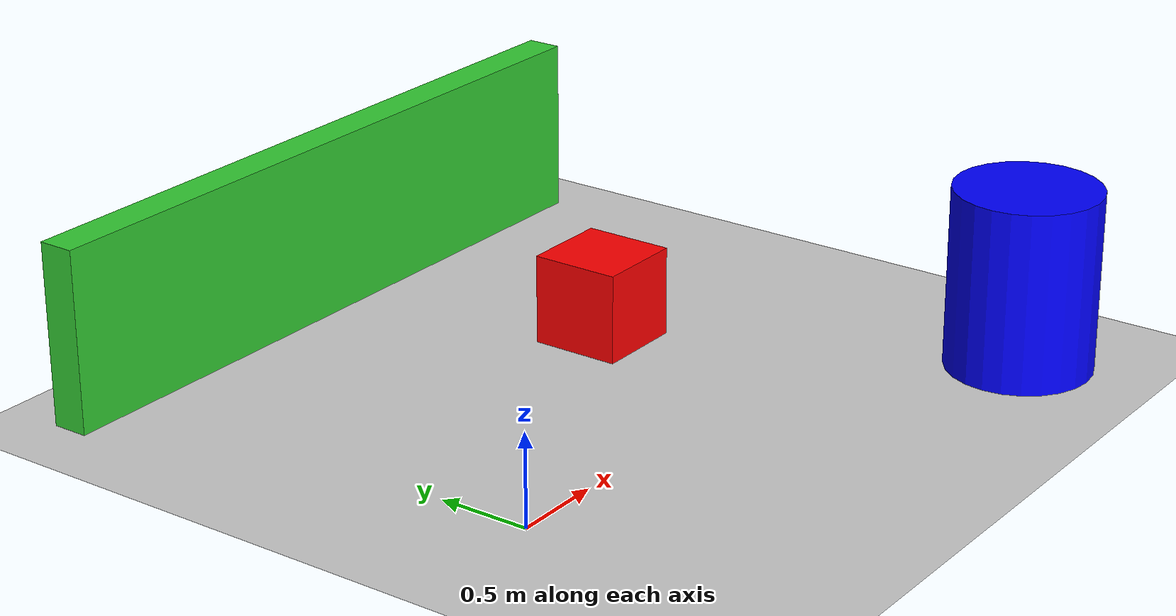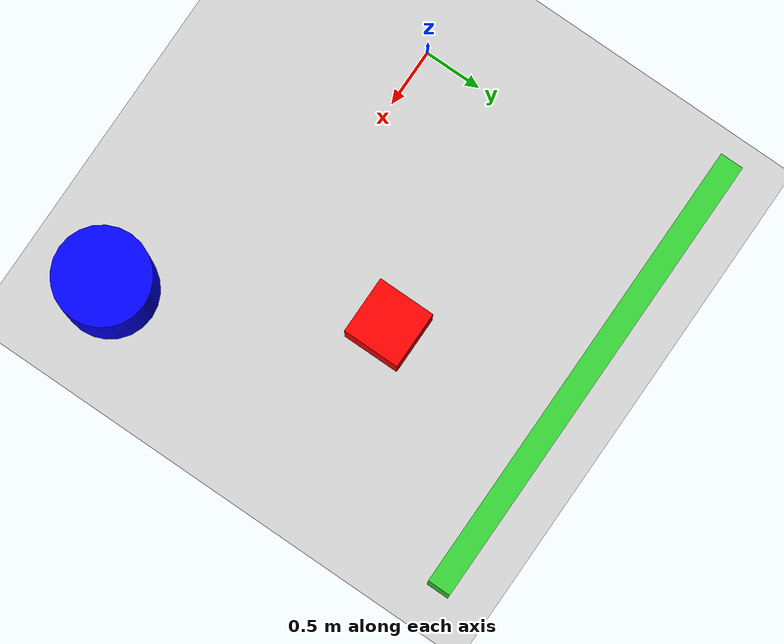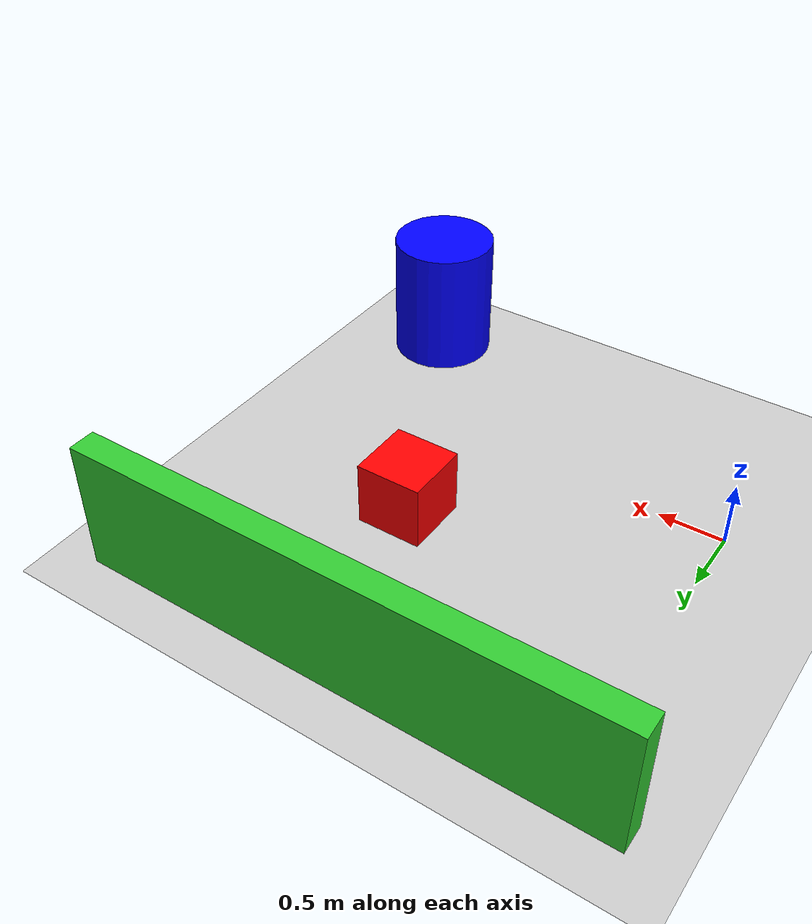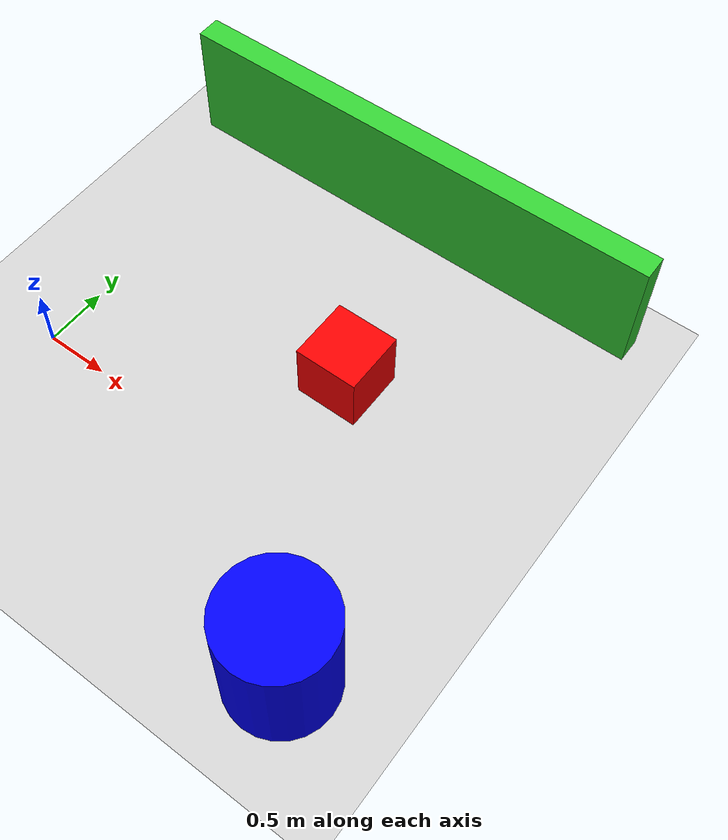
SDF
<?xml version="1.0" ?>
<sdf version="1.5">
  <world name="default">
    <include><uri>model://sun</uri></include>
    <include><uri>model://ground_plane</uri></include>

    <!-- Red Box Obstacle -->
    <model name="red_box">
      <pose>2 1 0.25 0 0 0</pose>
      <static>true</static>
      <link name="link">
        <collision name="collision"><geometry><box><size>0.5 0.5 0.5</size></box></geometry></collision>
        <visual name="visual">
          <geometry><box><size>0.5 0.5 0.5</size></box></geometry>
          <material><ambient>1 0 0 1</ambient></material>
        </visual>
      </link>
    </model>

    <!-- Blue Cylinder Obstacle -->
    <model name="blue_cylinder">
      <pose>3 -1 0.5 0 0 0</pose>
      <static>true</static>
      <link name="link">
        <collision name="collision"><geometry><cylinder><radius>0.4</radius><length>1</length></cylinder></geometry></collision>
        <visual name="visual">
          <geometry><cylinder><radius>0.4</radius><length>1</length></cylinder></geometry>
          <material><ambient>0 0 1 1</ambient></material>
        </visual>
      </link>
    </model>

    <!-- Long Wall Obstacle -->
    <model name="wall">
      <pose>1.5 2.5 0.5 0 0 0</pose>
      <static>true</static>
      <link name="link">
        <collision name="collision"><geometry><box><size>4 0.2 1</size></box></geometry></collision>
        <visual name="visual">
          <geometry><box><size>4 0.2 1</size></box></geometry>
          <material><ambient>0.2 0.8 0.2 1</ambient></material>
        </visual>
      </link>
    </model>
  </world>
</sdf>
